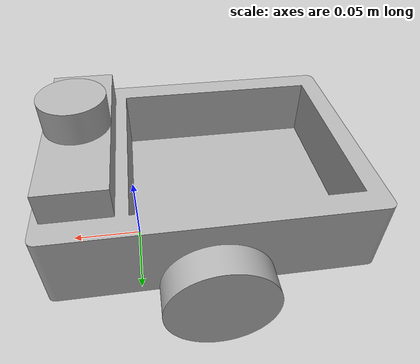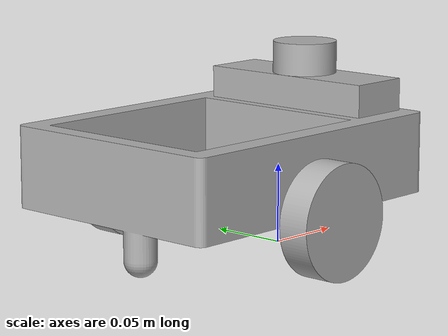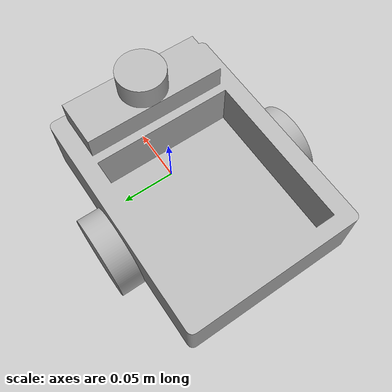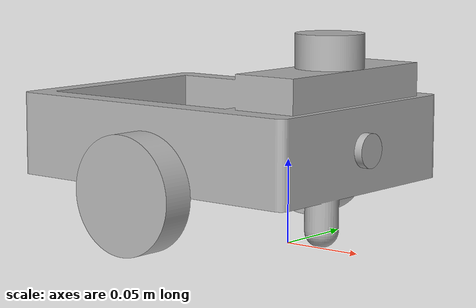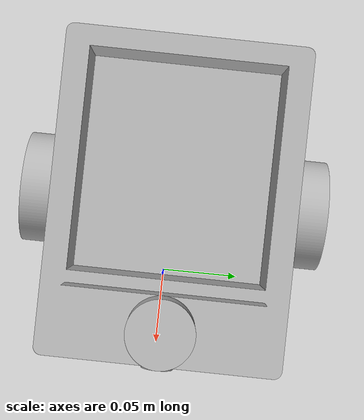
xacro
<?xml version="1.0" ?>
<robot name="final_project" xmlns:xacro="http://www.ros.org/wiki/xacro">

<xacro:include filename="$(find final_project_description)/urdf/materials.xacro" />
<xacro:include filename="$(find final_project_description)/urdf/final_project.trans" />
<xacro:include filename="$(find final_project_description)/urdf/final_project.gazebo" />
<link name="base_link">
  <inertial>
    <origin xyz="0 00 0.05" rpy="0 0 0"/>
    <mass value="7.589566392674318"/>
    <inertia ixx="0.01" iyy="0.01" izz="0.01" ixy="0.0" iyz="0.0" ixz="0.0"/>
  </inertial>
  <visual>
    <origin xyz="0 0 0" rpy="0 0 0"/>
    <geometry>
      <mesh filename="package://final_project_description/meshes/base_link.stl" scale="0.001 0.001 0.001"/>
    </geometry>
    <material name="silver"/>
  </visual>
  <collision>
    <origin xyz="0 0 0" rpy="0 0 0"/>
    <geometry>
      <mesh filename="package://final_project_description/meshes/base_link.stl" scale="0.001 0.001 0.001"/>
    </geometry>
  </collision>
</link>

<link name="right_wheel_1">
  <inertial>
    <origin xyz="2.7755575615628914e-17 -0.010000000000000023 0.0" rpy="0 0 0"/>
    <mass value="0.6042068071016569"/>
    <inertia ixx="0.000205" iyy="0.00037" izz="0.000205" ixy="0.0" iyz="-0.0" ixz="-0.0"/>
  </inertial>
  <visual>
    <origin xyz="0.0475 0.0725 -0.035" rpy="0 0 0"/>
    <geometry>
      <mesh filename="package://final_project_description/meshes/right_wheel_1.stl" scale="0.001 0.001 0.001"/>
    </geometry>
    <material name="silver"/>
  </visual>
  <collision>
    <origin xyz="0.0475 0.0725 -0.035" rpy="0 0 0"/>
    <geometry>
      <mesh filename="package://final_project_description/meshes/right_wheel_1.stl" scale="0.001 0.001 0.001"/>
    </geometry>
  </collision>
</link>

<link name="left_wheel_1">
  <inertial>
    <origin xyz="-2.7755575615628914e-17 0.009999999999999995 2.0816681711721685e-17" rpy="0 0 0"/>
    <mass value="0.6042068071016572"/>
    <inertia ixx="0.000205" iyy="0.00037" izz="0.000205" ixy="0.0" iyz="-0.0" ixz="0.0"/>
  </inertial>
  <visual>
    <origin xyz="0.0475 -0.0775 -0.035" rpy="0 0 0"/>
    <geometry>
      <mesh filename="package://final_project_description/meshes/left_wheel_1.stl" scale="0.001 0.001 0.001"/>
    </geometry>
    <material name="silver"/>
  </visual>
  <collision>
    <origin xyz="0.0475 -0.0775 -0.035" rpy="0 0 0"/>
    <geometry>
      <mesh filename="package://final_project_description/meshes/left_wheel_1.stl" scale="0.001 0.001 0.001"/>
    </geometry>
  </collision>
</link>

<link name="lidar_1">
  <inertial>
    <origin xyz="1.1175870853752379e-09 8.673617379884035e-18 0.010000000000000023" rpy="0 0 0"/>
    <mass value="0.19729201864543874"/>
    <inertia ixx="2.6e-05" iyy="2.6e-05" izz="3.9e-05" ixy="-0.0" iyz="0.0" ixz="0.0"/>
  </inertial>
  <visual>
    <origin xyz="-0.0275 -0.0025 -0.105" rpy="0 0 0"/>
    <geometry>
      <mesh filename="package://final_project_description/meshes/lidar_1.stl" scale="0.001 0.001 0.001"/>
    </geometry>
    <material name="silver"/>
  </visual>
  <collision>
    <origin xyz="-0.0275 -0.0025 -0.105" rpy="0 0 0"/>
    <geometry>
      <mesh filename="package://final_project_description/meshes/lidar_1.stl" scale="0.001 0.001 0.001"/>
    </geometry>
  </collision>
</link>

<link name="camera_1">
  <inertial>
    <origin xyz="0.0024999999999999953 8.673617379884035e-18 0.0" rpy="0 0 0"/>
    <mass value="0.012330751165339937"/>
    <inertia ixx="1e-06" iyy="0.0" izz="0.0" ixy="0.0" iyz="-0.0" ixz="0.0"/>
  </inertial>
  <visual>
    <origin xyz="-0.0525 -0.0025 -0.06" rpy="0 0 0"/>
    <geometry>
      <mesh filename="package://final_project_description/meshes/camera_1.stl" scale="0.001 0.001 0.001"/>
    </geometry>
    <material name="silver"/>
  </visual>
  <collision>
    <origin xyz="-0.0525 -0.0025 -0.06" rpy="0 0 0"/>
    <geometry>
      <mesh filename="package://final_project_description/meshes/camera_1.stl" scale="0.001 0.001 0.001"/>
    </geometry>
  </collision>
</link>

<joint name="Revolute 1" type="continuous">
  <origin xyz="-0.0475 -0.0725 0.035" rpy="0 0 0"/>
  <parent link="base_link"/>
  <child link="right_wheel_1"/>
  <axis xyz="0.0 1.0 0.0"/>
</joint>

<joint name="Revolute 2" type="continuous">
  <origin xyz="-0.0475 0.0775 0.035" rpy="0 0 0"/>
  <parent link="base_link"/>
  <child link="left_wheel_1"/>
  <axis xyz="0.0 1.0 0.0"/>
</joint>

<joint name="Rigid 3" type="fixed">
  <origin xyz="0.0275 0.0025 0.105" rpy="0 0 0"/>
  <parent link="base_link"/>
  <child link="lidar_1"/>
</joint>

<joint name="Rigid 4" type="fixed">
  <origin xyz="0.0525 0.0025 0.06" rpy="0 0 0"/>
  <parent link="base_link"/>
  <child link="camera_1"/>
</joint>

</robot>

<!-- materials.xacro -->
<robot name="final_project" xmlns:xacro="http://www.ros.org/wiki/xacro" >

<material name="silver">
  <color rgba="0.700 0.700 0.700 1.000"/>
</material>

</robot>

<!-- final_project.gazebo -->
<robot name="final_project" xmlns:xacro="http://www.ros.org/wiki/xacro" >

<xacro:property name="body_color" value="Gazebo/Silver" />

<gazebo>
  <plugin name="control" filename="libgazebo_ros_control.so"/>
</gazebo>
<gazebo reference="base_link">
  <material>${body_color}</material>
  <mu1>0.1</mu1>
  <mu2>0.1</mu2>
  <selfCollide>true</selfCollide>
  <gravity>true</gravity>
</gazebo>

<gazebo reference="right_wheel_1">
  <material>${body_color}</material>
  <mu1>1500</mu1>
  <mu2>1500</mu2>
  <selfCollide>true</selfCollide>
</gazebo>

<gazebo reference="left_wheel_1">
  <material>${body_color}</material>
  <mu1>1500</mu1>
  <mu2>1500</mu2>
  <selfCollide>true</selfCollide>
</gazebo>

<gazebo reference="lidar_1">
  <material>${body_color}</material>
  <mu1>0.2</mu1>
  <mu2>0.2</mu2>
  <selfCollide>true</selfCollide>
</gazebo>

<gazebo reference="camera_1">
  <material>${body_color}</material>
  <mu1>0.2</mu1>
  <mu2>0.2</mu2>
  <selfCollide>true</selfCollide>
</gazebo>
<gazebo>
  <plugin name="differential_drive_controller" filename="libgazebo_ros_diff_drive.so">

    <!-- Plugin update rate in Hz -->
    <updateRate>100</updateRate>

    <!-- Name of left joint, defaults to `left_joint` -->
    <leftJoint>Revolute 2</leftJoint>

    <!-- Name of right joint, defaults to `right_joint` -->
    <rightJoint>Revolute 1</rightJoint>

    <!-- The distance from the center of one wheel to the other, in meters, defaults to 0.34 m -->
    <wheelSeparation>0.15</wheelSeparation>

    <!-- Diameter of the wheels, in meters, defaults to 0.15 m -->
    <wheelDiameter>0.07</wheelDiameter>

    <!-- Wheel acceleration, in rad/s^2, defaults to 0.0 rad/s^2 -->
    <wheelAcceleration>1.0</wheelAcceleration>

    <!-- Maximum torque which the wheels can produce, in Nm, defaults to 5 Nm -->
    <wheelTorque>50</wheelTorque>

    <!-- Topic to receive geometry_msgs/Twist message commands, defaults to `cmd_vel` -->
    <commandTopic>cmd_vel</commandTopic>

    <!-- Topic to publish nav_msgs/Odometry messages, defaults to `odom` -->
    <odometryTopic>odom</odometryTopic>

    <!-- Odometry frame, defaults to `odom` -->
    <odometryFrame>odom</odometryFrame>

    <!-- Robot frame to calculate odometry from, defaults to `base_footprint` -->
    <robotBaseFrame>base_link</robotBaseFrame>

    <!-- Odometry source, 0 for ENCODER, 1 for WORLD, defaults to WORLD -->
    <odometrySource>1</odometrySource>

    <!-- Set to true to publish transforms for the wheel links, defaults to false -->
    <publishWheelTF>true</publishWheelTF>

    <!-- Set to true to publish transforms for the odometry, defaults to true -->
    <publishOdom>true</publishOdom>

    <!-- Set to true to publish sensor_msgs/JointState on /joint_states for the wheel joints, defaults to false -->
    <publishWheelJointState>true</publishWheelJointState>

    <!-- Set to true to swap right and left wheels, defaults to true -->
    <legacyMode>false</legacyMode>
  </plugin>
</gazebo>
  <!-- hokuyo -->
  <gazebo reference="lidar_1">
    <sensor type="gpu_ray" name="head_hokuyo_sensor">
      <pose>0 0 0 0 0 0</pose>
      <visualize>true</visualize>
      <update_rate>40</update_rate>
      <ray>
        <scan>
          <horizontal>
            <samples>720</samples>
            <resolution>1</resolution>
            <min_angle>-1.570796</min_angle>
            <max_angle>1.570796</max_angle>
          </horizontal>
        </scan>
        <range>
          <min>0.10</min>
          <max>30.0</max>
          <resolution>0.01</resolution>
        </range>
        <noise>
          <type>gaussian</type>
          <mean>0.0</mean>
          <stddev>0.01</stddev>
        </noise>
      </ray>
      <plugin name="gazebo_ros_head_hokuyo_controller" filename="libgazebo_ros_gpu_laser.so">
        <topicName>/scan</topicName>
        <frameName>lidar_1</frameName>
      </plugin>
    </sensor>
  </gazebo>
  <!-- camera -->
  <gazebo reference="camera_1">
    <sensor type="camera" name="camera1">
      <update_rate>30.0</update_rate>
      <camera name="head">
        <horizontal_fov>1.3962634</horizontal_fov>
        <image>
          <width>800</width>
          <height>800</height>
          <format>R8G8B8</format>
        </image>
        <clip>
          <near>0.02</near>
          <far>300</far>
        </clip>
        <noise>
          <type>gaussian</type>
          <!-- Noise is sampled independently per pixel on each frame.
               That pixel's noise value is added to each of its color
               channels, which at that point lie in the range [0,1]. -->
          <mean>0.0</mean>
          <stddev>0.007</stddev>
        </noise>
      </camera>
      <plugin name="camera_controller" filename="libgazebo_ros_camera.so">
        <alwaysOn>true</alwaysOn>
        <updateRate>0.0</updateRate>
        <cameraName>/camera1</cameraName>
        <imageTopicName>image_raw</imageTopicName>
        <cameraInfoTopicName>camera_info</cameraInfoTopicName>
        <frameName>camera_1</frameName>
        <hackBaseline>0.07</hackBaseline>
        <distortionK1>0.0</distortionK1>
        <distortionK2>0.0</distortionK2>
        <distortionK3>0.0</distortionK3>
        <distortionT1>0.0</distortionT1>
        <distortionT2>0.0</distortionT2>
      </plugin>
    </sensor>
  </gazebo>
</robot>
